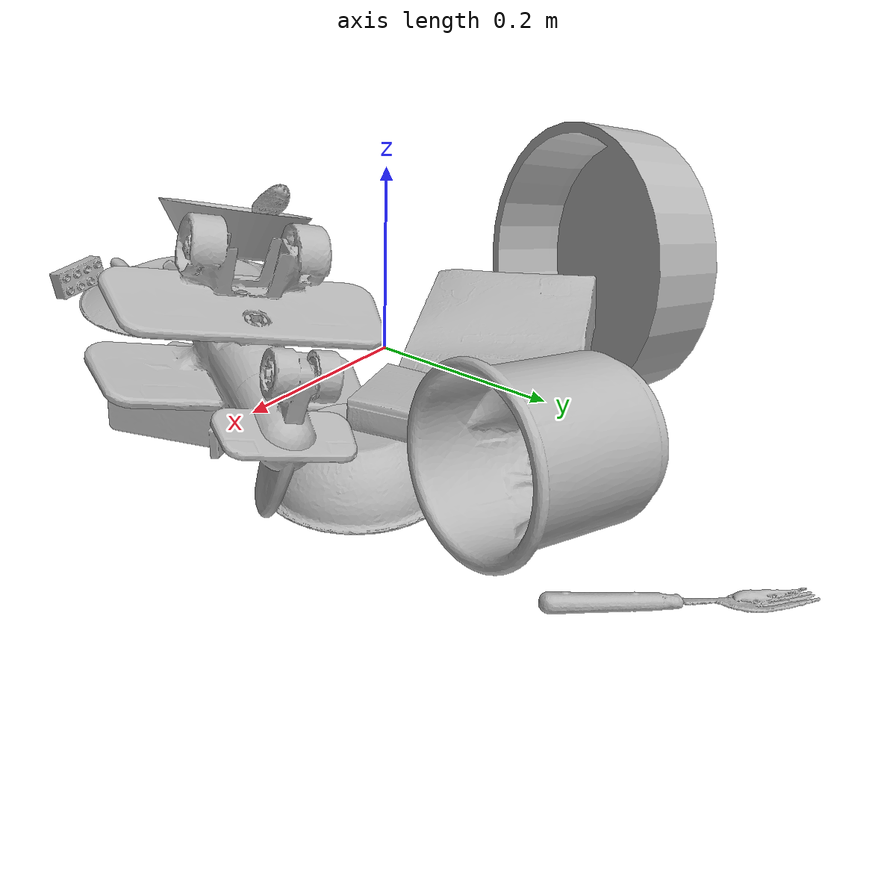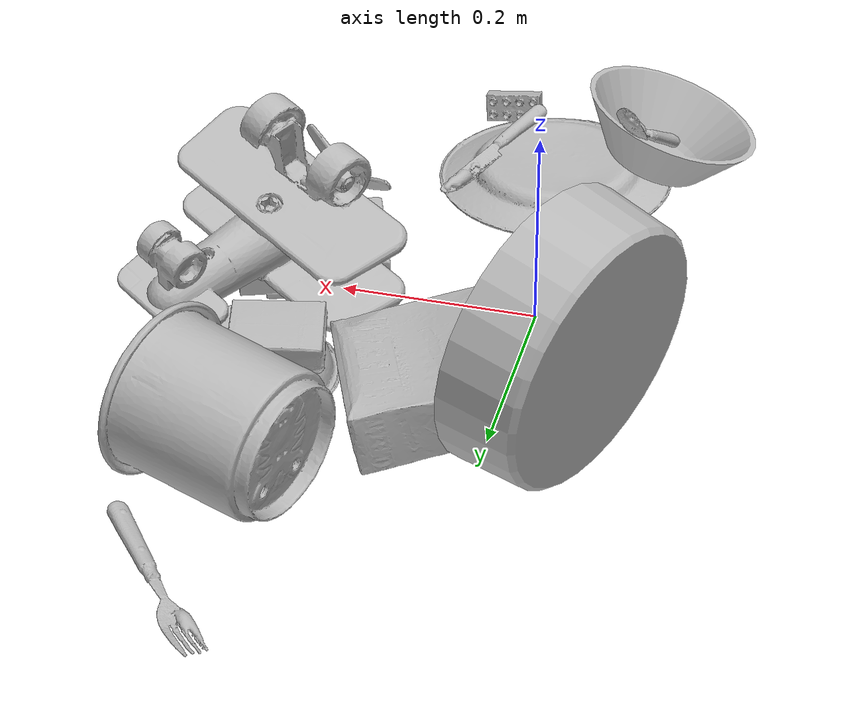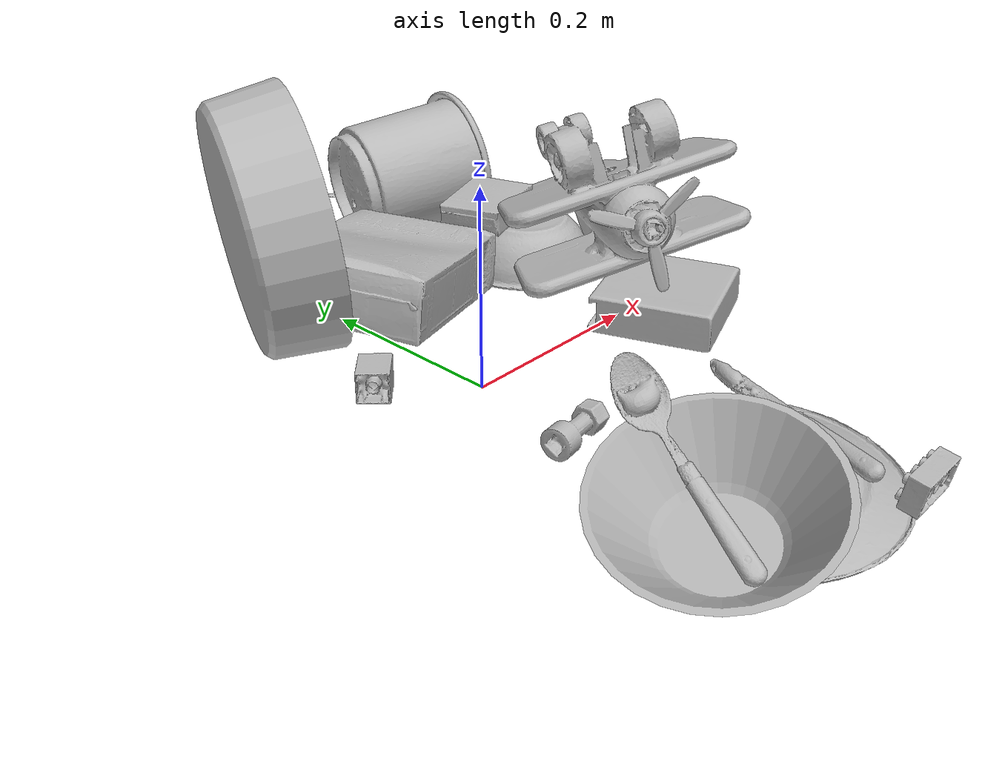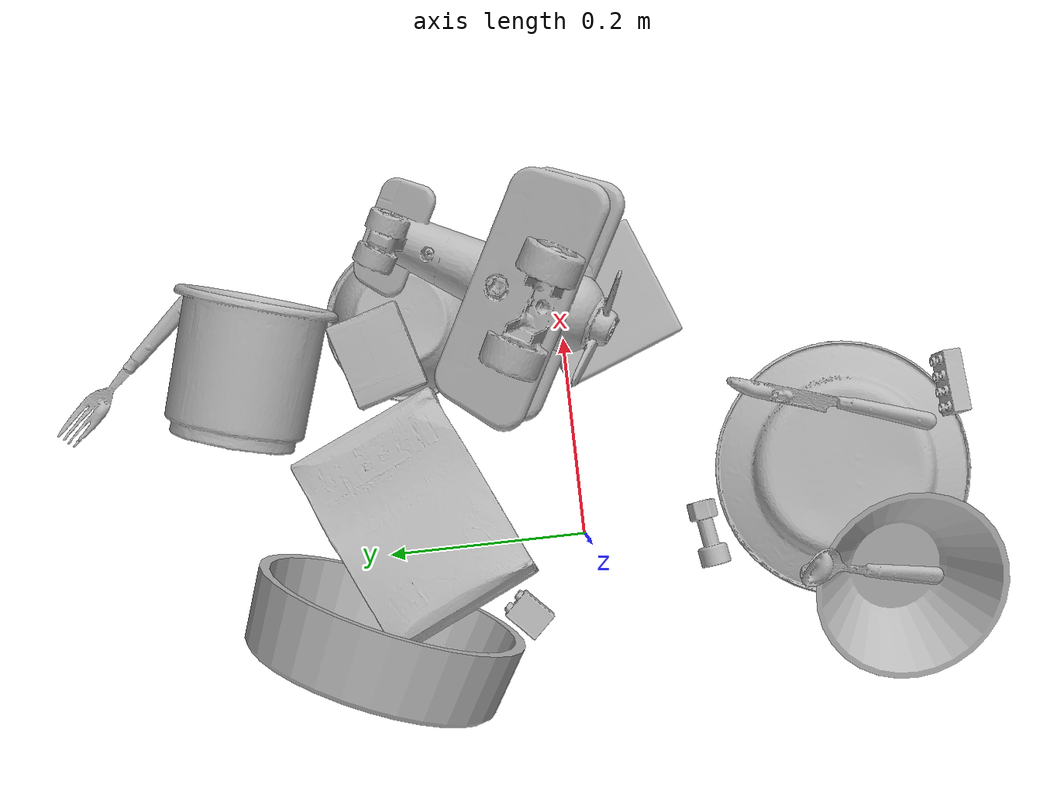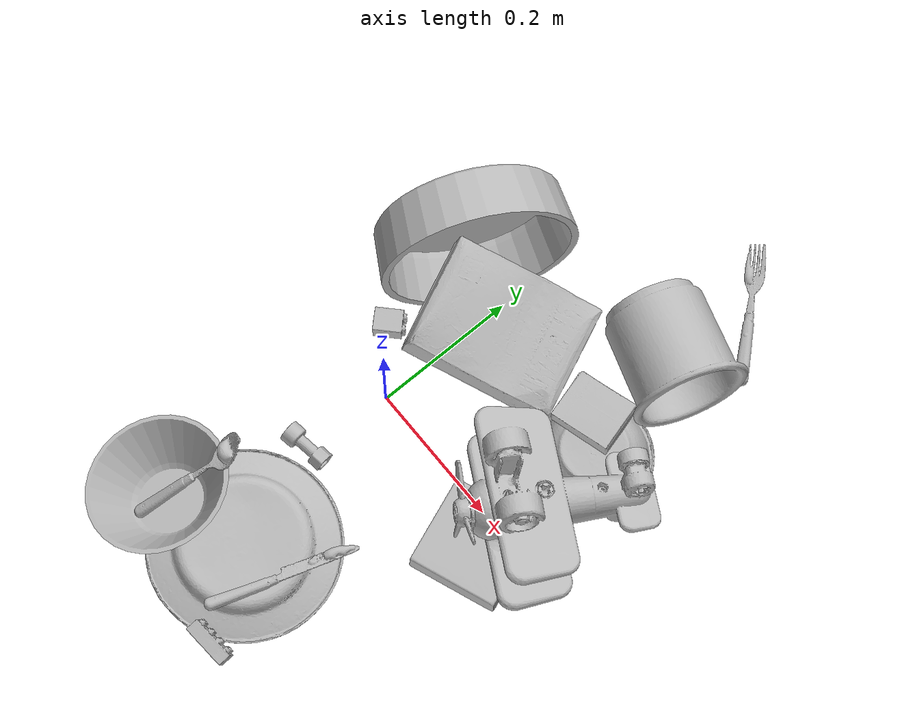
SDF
<sdf version="1.4">
  <world name="default">
    <light name="light1" type="point">
      <pose>0 0 1 0 0 0</pose>
      <diffuse>3 3 3 1</diffuse>
      <specular>3 3 3 1</specular>
    </light>
    <light name="light2" type="point">
      <pose>0 0.5 2 0 0 0</pose>
      <diffuse>1 1 1 1</diffuse>
      <specular>1 1 1 1</specular>
    </light>
    <light name="light3" type="point">
      <pose>0 0.5 2 0 0 0</pose>
      <diffuse>3 3 3 1</diffuse>
      <specular>3 3 3 1</specular>
    </light>
    <scene>
      <ambient>0.7 0.7 0.7</ambient>
    </scene>
    <model name="plate1">
      <link name="link_plate1">
        <collision name="default">
          <geometry>
            <mesh>
              <uri>model://plate/collision_meshes/collision.obj</uri>
              <scale>1.0 1.0 1.0</scale>
            </mesh>
          </geometry>
          <surface>
            <friction>
              <ode>
                <mu>0.5</mu>
                <mu2>0.5</mu2>
              </ode>
            </friction>
          <contact>
        <ode>
            <max_vel>0</max_vel>
            <min_depth>0.0001</min_depth>
            <kp>1e8</kp>
        </ode>
    </contact></surface>
        </collision>
        <visual name="default">
          <geometry>
            <mesh>
              <uri>model://plate/visual_meshes/visual.dae</uri>
              <scale>1.0 1.0 1.0</scale>
            </mesh>
          </geometry>
        </visual>
        <inertial>
          <mass>0.1516857147216797</mass>
          <pose>-0.0006044649053364992 0.00027825761935673654 -0.0010561972158029675 0.002218765199568956 -0.003225488596237322 0.4526153800388047</pose>
          <inertia>
            <ixx>0.00070958876</ixx>
            <iyy>0.0007028018</iyy>
            <izz>0.00138785</izz>
            <ixy>0</ixy>
            <ixz>0</ixz>
            <iyz>0</iyz>
          </inertia>
        </inertial>
      </link>
      <pose>0.037294261157512665 -0.2693851888179779 0.013458596542477608 3.1410846869916607 -0.0032523944121630385 2.1677666301106093</pose>
    </model>
    <model name="plate2">
      <link name="link_plate2">
        <collision name="default">
          <geometry>
            <mesh>
              <uri>model://pan_tefal/collision_meshes/collision.obj</uri>
              <scale>1.0 1.0 1.0</scale>
            </mesh>
          </geometry>
          <surface>
            <friction>
              <ode>
                <mu>0.5</mu>
                <mu2>0.5</mu2>
              </ode>
            </friction>
          <contact>
        <ode>
            <max_vel>0</max_vel>
            <min_depth>0.0001</min_depth>
            <kp>1e8</kp>
        </ode>
    </contact></surface>
        </collision>
        <visual name="default">
          <geometry>
            <mesh>
              <uri>model://pan_tefal/visual_meshes/visual.dae</uri>
              <scale>1.0 1.0 1.0</scale>
            </mesh>
          </geometry>
        </visual>
        <inertial>
          <mass>1.0862284898757935</mass>
          <pose>-0.00018001910939347 3.2794348953757435e-05 -0.00851493515074253 0.0008190334899032376 -0.0003301482999058744 -0.3318501395419688</pose>
          <inertia>
            <ixx>0.0074981838</ixx>
            <iyy>0.007546525</iyy>
            <izz>0.013802713</izz>
            <ixy>0</ixy>
            <ixz>0</ixz>
            <iyz>0</iyz>
          </inertia>
        </inertial>
      </link>
      <pose>-0.07267885655164719 0.20744505524635315 0.12805971503257751 -0.7578589773875816 -1.416486056249529 -2.8104023981048507</pose>
    </model>
    <model name="bowl1">
      <link name="link_bowl1">
        <collision name="default">
          <geometry>
            <mesh>
              <uri>model://bowl_a/collision_meshes/collision.obj</uri>
              <scale>1.0 1.0 1.0</scale>
            </mesh>
          </geometry>
          <surface>
            <friction>
              <ode>
                <mu>0.5</mu>
                <mu2>0.5</mu2>
              </ode>
            </friction>
          <contact>
        <ode>
            <max_vel>0</max_vel>
            <min_depth>0.0001</min_depth>
            <kp>1e8</kp>
        </ode>
    </contact></surface>
        </collision>
        <visual name="default">
          <geometry>
            <mesh>
              <uri>model://bowl_a/visual_meshes/visual.dae</uri>
              <scale>1.0 1.0 1.0</scale>
            </mesh>
          </geometry>
        </visual>
        <inertial>
          <mass>0.23323877155780792</mass>
          <pose>0.0002786752884276211 4.7312129026977345e-05 -0.001376529224216938 -0.000980538139416196 -0.00109382495954127 -0.19123674059098103</pose>
          <inertia>
            <ixx>0.0006640416</ixx>
            <iyy>0.0006681184</iyy>
            <izz>0.0011810234</izz>
            <ixy>0</ixy>
            <ixz>0</ixz>
            <iyz>0</iyz>
          </inertia>
        </inertial>
      </link>
      <pose>-0.07523203641176224 -0.31027230620384216 0.046312760561704636 -0.31751187246804485 0.023271724520906614 1.8913988369445893</pose>
    </model>
    <model name="bowl2">
      <link name="link_bowl2">
        <collision name="default">
          <geometry>
            <mesh>
              <uri>model://bowl/collision_meshes/collision.obj</uri>
              <scale>1.0 1.0 1.0</scale>
            </mesh>
          </geometry>
          <surface>
            <friction>
              <ode>
                <mu>0.5</mu>
                <mu2>0.5</mu2>
              </ode>
            </friction>
          <contact>
        <ode>
            <max_vel>0</max_vel>
            <min_depth>0.0001</min_depth>
            <kp>1e8</kp>
        </ode>
    </contact></surface>
        </collision>
        <visual name="default">
          <geometry>
            <mesh>
              <uri>model://bowl/visual_meshes/visual.dae</uri>
              <scale>1.0 1.0 1.0</scale>
            </mesh>
          </geometry>
        </visual>
        <inertial>
          <mass>0.08787161856889725</mass>
          <pose>0.00020445531117729843 -0.0010302038863301277 -0.0008042651461437345 -0.015764035308279474 0.014546860922519275 0.7140443952173783</pose>
          <inertia>
            <ixx>0.00020184812</ixx>
            <iyy>0.00019733804</iyy>
            <izz>0.00033957793</izz>
            <ixy>0</ixy>
            <ixz>0</ixz>
            <iyz>0</iyz>
          </inertia>
        </inertial>
      </link>
      <pose>0.23542732000350952 0.15904702246189117 0.02726699784398079 -3.133847522302395 -0.0007444669735135163 0.6393042272398238</pose>
    </model>
    <model name="silverware1">
      <link name="link_silverware1">
        <collision name="default">
          <geometry>
            <mesh>
              <uri>model://spoon/collision_meshes/collision.obj</uri>
              <scale>1.0 1.0 1.0</scale>
            </mesh>
          </geometry>
          <surface>
            <friction>
              <ode>
                <mu>0.5</mu>
                <mu2>0.5</mu2>
              </ode>
            </friction>
          <contact>
        <ode>
            <max_vel>0</max_vel>
            <min_depth>0.0001</min_depth>
            <kp>1e8</kp>
        </ode>
    </contact></surface>
        </collision>
        <visual name="default">
          <geometry>
            <mesh>
              <uri>model://spoon/visual_meshes/visual.dae</uri>
              <scale>1.0 1.0 1.0</scale>
            </mesh>
          </geometry>
        </visual>
        <inertial>
          <mass>0.028818774968385696</mass>
          <pose>-0.0055263228714466095 -0.0016034181462600827 -0.0007271657814271748 0.03521556092832266 -0.039065843026344464 0.006150610888934851</pose>
          <inertia>
            <ixx>1.6029475e-06</ixx>
            <iyy>0.0001096545</iyy>
            <izz>0.000110445</izz>
            <ixy>0</ixy>
            <ixz>0</ixz>
            <iyz>0</iyz>
          </inertia>
        </inertial>
      </link>
      <pose>-0.06642390787601471 -0.2715807557106018 0.07018439471721649 -0.39135618042227655 -0.5473130261236101 1.3417585380964494</pose>
    </model>
    <model name="box1">
      <link name="link_box1">
        <collision name="default">
          <geometry>
            <mesh>
              <uri>model://cracker_box/collision_meshes/collision.obj</uri>
              <scale>1.0 1.0 1.0</scale>
            </mesh>
          </geometry>
          <surface>
            <friction>
              <ode>
                <mu>0.5</mu>
                <mu2>0.5</mu2>
              </ode>
            </friction>
          <contact>
        <ode>
            <max_vel>0</max_vel>
            <min_depth>0.0001</min_depth>
            <kp>1e8</kp>
        </ode>
    </contact></surface>
        </collision>
        <visual name="default">
          <geometry>
            <mesh>
              <uri>model://cracker_box/visual_meshes/visual.dae</uri>
              <scale>1.0 1.0 1.0</scale>
            </mesh>
          </geometry>
        </visual>
        <inertial>
          <mass>2.9781224727630615</mass>
          <pose>0.0009464174509048462 0.00025434247800149024 -0.0017029534792527556 -0.0003162077703261406 -0.01110649239447325 0.0025467938390949236</pose>
          <inertia>
            <ixx>0.007575013</ixx>
            <iyy>0.012507835</iyy>
            <izz>0.017849829</izz>
            <ixy>0</ixy>
            <ixz>0</ixz>
            <iyz>0</iyz>
          </inertia>
        </inertial>
      </link>
      <pose>0.03523122891783714 0.16810032725334167 0.05494178459048271 -0.05400546609053263 -0.16651428922467806 -2.715569671808164</pose>
    </model>
    <model name="box2">
      <link name="link_box2">
        <collision name="default">
          <geometry>
            <mesh>
              <uri>model://gelatin_box/collision_meshes/collision.obj</uri>
              <scale>1.0 1.0 1.0</scale>
            </mesh>
          </geometry>
          <surface>
            <friction>
              <ode>
                <mu>0.5</mu>
                <mu2>0.5</mu2>
              </ode>
            </friction>
          <contact>
        <ode>
            <max_vel>0</max_vel>
            <min_depth>0.0001</min_depth>
            <kp>1e8</kp>
        </ode>
    </contact></surface>
        </collision>
        <visual name="default">
          <geometry>
            <mesh>
              <uri>model://gelatin_box/visual_meshes/visual.dae</uri>
              <scale>1.0 1.0 1.0</scale>
            </mesh>
          </geometry>
        </visual>
        <inertial>
          <mass>0.16266882419586182</mass>
          <pose>0.0004319618456065655 0.00011156871914863586 -0.0003640321083366871 -0.0010503720968416132 -0.004755819155016646 0.016440559472150423</pose>
          <inertia>
            <ixx>0.00011483092</ixx>
            <iyy>8.202313e-05</iyy>
            <izz>0.00017479825</izz>
            <ixy>0</ixy>
            <ixz>0</ixz>
            <iyz>0</iyz>
          </inertia>
        </inertial>
      </link>
      <pose>0.20057636499404907 0.1851377636194229 0.06998535990715027 3.0844903015122695 0.03417924823389827 1.8556793149061603</pose>
    </model>
    <model name="cup1">
      <link name="link_cup1">
        <collision name="default">
          <geometry>
            <mesh>
              <uri>model://f_cups/collision_meshes/collision.obj</uri>
              <scale>2.0 2.0 2.0</scale>
            </mesh>
          </geometry>
          <surface>
            <friction>
              <ode>
                <mu>0.5</mu>
                <mu2>0.5</mu2>
              </ode>
            </friction>
          <contact>
        <ode>
            <max_vel>0</max_vel>
            <min_depth>0.0001</min_depth>
            <kp>1e8</kp>
        </ode>
    </contact></surface>
        </collision>
        <visual name="default">
          <geometry>
            <mesh>
              <uri>model://f_cups/visual_meshes/visual.dae</uri>
              <scale>2.0 2.0 2.0</scale>
            </mesh>
          </geometry>
        </visual>
        <inertial>
          <mass>0.6683602333068848</mass>
          <pose>-0.006342936307191849 -0.0012480152072384953 -0.0073110745288431644 0.7862253042657107 -0.260793604503958 -0.18237387444081576</pose>
          <inertia>
            <ixx>0.0025131067</ixx>
            <iyy>0.0026362767</iyy>
            <izz>0.0027444381</izz>
            <ixy>0</ixy>
            <ixz>0</ixz>
            <iyz>0</iyz>
          </inertia>
        </inertial>
      </link>
      <pose>0.20042313635349274 0.3162248730659485 0.07446635514497757 1.4600708052354365 0.5808011160129556 1.2059894303477883</pose>
    </model>
    <model name="silverware2">
      <link name="link_silverware2">
        <collision name="default">
          <geometry>
            <mesh>
              <uri>model://knife/collision_meshes/collision.obj</uri>
              <scale>1.0 1.0 1.0</scale>
            </mesh>
          </geometry>
          <surface>
            <friction>
              <ode>
                <mu>0.5</mu>
                <mu2>0.5</mu2>
              </ode>
            </friction>
          <contact>
        <ode>
            <max_vel>0</max_vel>
            <min_depth>0.0001</min_depth>
            <kp>1e8</kp>
        </ode>
    </contact></surface>
        </collision>
        <visual name="default">
          <geometry>
            <mesh>
              <uri>model://knife/visual_meshes/visual.dae</uri>
              <scale>1.0 1.0 1.0</scale>
            </mesh>
          </geometry>
        </visual>
        <inertial>
          <mass>0.03087119571864605</mass>
          <pose>-0.023785250261425972 0.0015275123296305537 5.062009586254135e-05 0.07305987484925712 0.017248420899959087 -0.007409824084002247</pose>
          <inertia>
            <ixx>8.762499e-07</ixx>
            <iyy>0.000118602155</iyy>
            <izz>0.00011888435</izz>
            <ixy>0</ixy>
            <ixz>0</ixz>
            <iyz>0</iyz>
          </inertia>
        </inertial>
      </link>
      <pose>0.10385214537382126 -0.2594519257545471 0.03249704837799072 2.7695070470015426 0.015698919579424563 1.2668631661908447</pose>
    </model>
    <model name="silverware3">
      <link name="link_silverware3">
        <collision name="default">
          <geometry>
            <mesh>
              <uri>model://fork/collision_meshes/collision.obj</uri>
              <scale>1.0 1.0 1.0</scale>
            </mesh>
          </geometry>
          <surface>
            <friction>
              <ode>
                <mu>0.5</mu>
                <mu2>0.5</mu2>
              </ode>
            </friction>
          <contact>
        <ode>
            <max_vel>0</max_vel>
            <min_depth>0.0001</min_depth>
            <kp>1e8</kp>
        </ode>
    </contact></surface>
        </collision>
        <visual name="default">
          <geometry>
            <mesh>
              <uri>model://fork/visual_meshes/visual.dae</uri>
              <scale>1.0 1.0 1.0</scale>
            </mesh>
          </geometry>
        </visual>
        <inertial>
          <mass>0.015284496359527111</mass>
          <pose>-0.02957003004848957 0.00046588233090005815 0.00032188600744120777 -0.013550803329795006 -0.010977829430356707 0.014453895799763906</pose>
          <inertia>
            <ixx>5.358081e-07</ixx>
            <iyy>3.9903432e-05</iyy>
            <izz>4.0143095e-05</izz>
            <ixy>0</ixy>
            <ixz>0</ixz>
            <iyz>0</iyz>
          </inertia>
        </inertial>
      </link>
      <pose>0.21935726702213287 0.44404616951942444 0.0057074762880802155 -0.18198369217436522 0.024719475354575693 2.3025863433775027</pose>
    </model>
    <model name="toy1">
      <link name="link_toy1">
        <collision name="default">
          <geometry>
            <mesh>
              <uri>model://c_toy_airplane/collision_meshes/collision.obj</uri>
              <scale>1.0 1.0 1.0</scale>
            </mesh>
          </geometry>
          <surface>
            <friction>
              <ode>
                <mu>0.5</mu>
                <mu2>0.5</mu2>
              </ode>
            </friction>
          <contact>
        <ode>
            <max_vel>0</max_vel>
            <min_depth>0.0001</min_depth>
            <kp>1e8</kp>
        </ode>
    </contact></surface>
        </collision>
        <visual name="default">
          <geometry>
            <mesh>
              <uri>model://c_toy_airplane/visual_meshes/visual.dae</uri>
              <scale>1.0 1.0 1.0</scale>
            </mesh>
          </geometry>
        </visual>
        <inertial>
          <mass>0.014899278059601784</mass>
          <pose>-0.0002302424400113523 -4.428088118402229e-07 -0.006080529186874628 -0.00619304524108313 -0.016797611161866028 0.7655100812139064</pose>
          <inertia>
            <ixx>6.841441e-06</ixx>
            <iyy>6.822133e-06</iyy>
            <izz>1.6062353e-06</izz>
            <ixy>0</ixy>
            <ixz>0</ixz>
            <iyz>0</iyz>
          </inertia>
        </inertial>
      </link>
      <pose>-0.012733394280076027 -0.1242620050907135 0.014369828626513481 -1.6759043607785888 1.2157528120171142 -1.523148932789503</pose>
    </model>
    <model name="toy2">
      <link name="link_toy2">
        <collision name="default">
          <geometry>
            <mesh>
              <uri>model://nine_hole_peg_test/collision_meshes/collision.obj</uri>
              <scale>1.0 1.0 1.0</scale>
            </mesh>
          </geometry>
          <surface>
            <friction>
              <ode>
                <mu>0.5</mu>
                <mu2>0.5</mu2>
              </ode>
            </friction>
          <contact>
        <ode>
            <max_vel>0</max_vel>
            <min_depth>0.0001</min_depth>
            <kp>1e8</kp>
        </ode>
    </contact></surface>
        </collision>
        <visual name="default">
          <geometry>
            <mesh>
              <uri>model://nine_hole_peg_test/visual_meshes/visual.dae</uri>
              <scale>1.0 1.0 1.0</scale>
            </mesh>
          </geometry>
        </visual>
        <inertial>
          <mass>0.8674170970916748</mass>
          <pose>-0.004617386031895876 -0.009647614322602749 2.6460689696250483e-05 -0.0014666783129250742 0.0007194188660534222 -0.6342410037611789</pose>
          <inertia>
            <ixx>0.0013563493</ixx>
            <iyy>0.0012664091</iyy>
            <izz>0.0023767245</izz>
            <ixy>0</ixy>
            <ixz>0</ixz>
            <iyz>0</iyz>
          </inertia>
        </inertial>
      </link>
      <pose>0.2387135624885559 -0.03003360889852047 0.02079104073345661 3.1415908366769 -2.225444740002015e-06 1.9285533366208283</pose>
    </model>
    <model name="toy3">
      <link name="link_toy3">
        <collision name="default">
          <geometry>
            <mesh>
              <uri>model://a_toy_airplane/collision_meshes/collision.obj</uri>
              <scale>1.0 1.0 1.0</scale>
            </mesh>
          </geometry>
          <surface>
            <friction>
              <ode>
                <mu>0.5</mu>
                <mu2>0.5</mu2>
              </ode>
            </friction>
          <contact>
        <ode>
            <max_vel>0</max_vel>
            <min_depth>0.0001</min_depth>
            <kp>1e8</kp>
        </ode>
    </contact></surface>
        </collision>
        <visual name="default">
          <geometry>
            <mesh>
              <uri>model://a_toy_airplane/visual_meshes/visual.dae</uri>
              <scale>1.0 1.0 1.0</scale>
            </mesh>
          </geometry>
        </visual>
        <inertial>
          <mass>1.0043106079101562</mass>
          <pose>0.02516508847475052 -0.003707321360707283 -0.0011962434509769082 -0.01201694293172648 -0.14663499629613377 0.0041490900747424425</pose>
          <inertia>
            <ixx>0.0036471337</ixx>
            <iyy>0.0053146123</iyy>
            <izz>0.0062227584</izz>
            <ixy>0</ixy>
            <ixz>0</ixz>
            <iyz>0</iyz>
          </inertia>
        </inertial>
      </link>
      <pose>0.2594234049320221 0.07000325620174408 0.09075119346380234 -2.9185130219497966 -0.3348971042345022 -2.147599223563593</pose>
    </model>
    <model name="toy4">
      <link name="link_toy4">
        <collision name="default">
          <geometry>
            <mesh>
              <uri>model://c_lego_duplo/collision_meshes/collision.obj</uri>
              <scale>1.0 1.0 1.0</scale>
            </mesh>
          </geometry>
          <surface>
            <friction>
              <ode>
                <mu>0.5</mu>
                <mu2>0.5</mu2>
              </ode>
            </friction>
          <contact>
        <ode>
            <max_vel>0</max_vel>
            <min_depth>0.0001</min_depth>
            <kp>1e8</kp>
        </ode>
    </contact></surface>
        </collision>
        <visual name="default">
          <geometry>
            <mesh>
              <uri>model://c_lego_duplo/visual_meshes/visual.dae</uri>
              <scale>1.0 1.0 1.0</scale>
            </mesh>
          </geometry>
        </visual>
        <inertial>
          <mass>0.019874408841133118</mass>
          <pose>0.0003164595691487193 0.0001946465636137873 0.0010453156428411603 -0.01152079101413275 0.005900072799474436 0.031100350485514378</pose>
          <inertia>
            <ixx>7.648045e-06</ixx>
            <iyy>2.443061e-06</iyy>
            <izz>8.937529e-06</izz>
            <ixy>0</ixy>
            <ixz>0</ixz>
            <iyz>0</iyz>
          </inertia>
        </inertial>
      </link>
      <pose>0.11179117858409882 -0.3830355107784271 0.02021755464375019 0.2907394749221511 1.382133923768759 1.9118400080557454</pose>
    </model>
    <model name="toy5">
      <link name="link_toy5">
        <collision name="default">
          <geometry>
            <mesh>
              <uri>model://b_lego_duplo/collision_meshes/collision.obj</uri>
              <scale>1.0 1.0 1.0</scale>
            </mesh>
          </geometry>
          <surface>
            <friction>
              <ode>
                <mu>0.5</mu>
                <mu2>0.5</mu2>
              </ode>
            </friction>
          <contact>
        <ode>
            <max_vel>0</max_vel>
            <min_depth>0.0001</min_depth>
            <kp>1e8</kp>
        </ode>
    </contact></surface>
        </collision>
        <visual name="default">
          <geometry>
            <mesh>
              <uri>model://b_lego_duplo/visual_meshes/visual.dae</uri>
              <scale>1.0 1.0 1.0</scale>
            </mesh>
          </geometry>
        </visual>
        <inertial>
          <mass>0.031542204320430756</mass>
          <pose>-0.0001105302435462363 -9.152341590379365e-06 0.001929428894072771 -0.03749493031375769 -0.026354084635952003 0.4518990108557965</pose>
          <inertia>
            <ixx>6.4553496e-06</ixx>
            <iyy>6.4987444e-06</iyy>
            <izz>5.7515063e-06</izz>
            <ixy>0</ixy>
            <ixz>0</ixz>
            <iyz>0</iyz>
          </inertia>
        </inertial>
      </link>
      <pose>-0.0733591616153717 0.0664731115102768 0.01618090458214283 0.045662451817791334 -1.5623782587143336 -2.4206950160424494</pose>
    </model>
  <physics type="ode">
      <max_contacts>50</max_contacts>
      <ode>
        <solver>
          <type>quick</type>
          <iters>75</iters>
        </solver>
        <constraints>
          <contact_max_correcting_vel>0</contact_max_correcting_vel>
          <contact_surface_layer>0</contact_surface_layer>
        </constraints>
      </ode>
    </physics></world>
</sdf>
